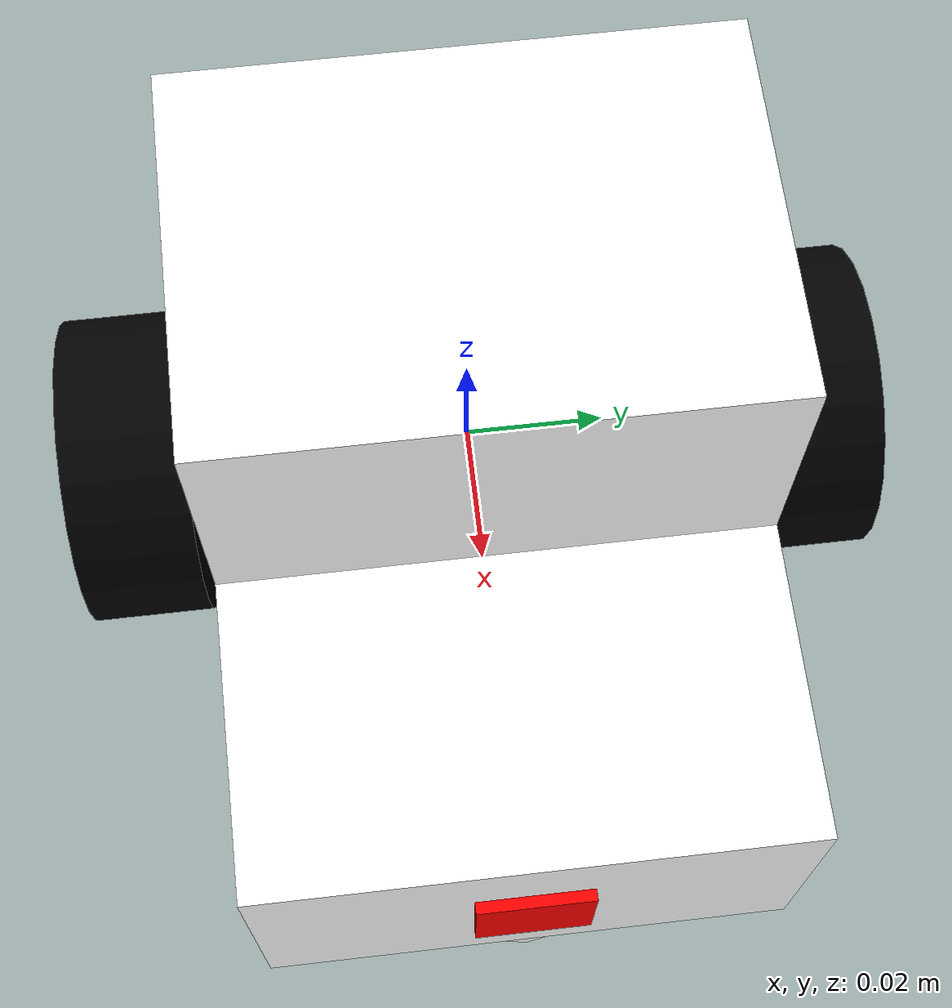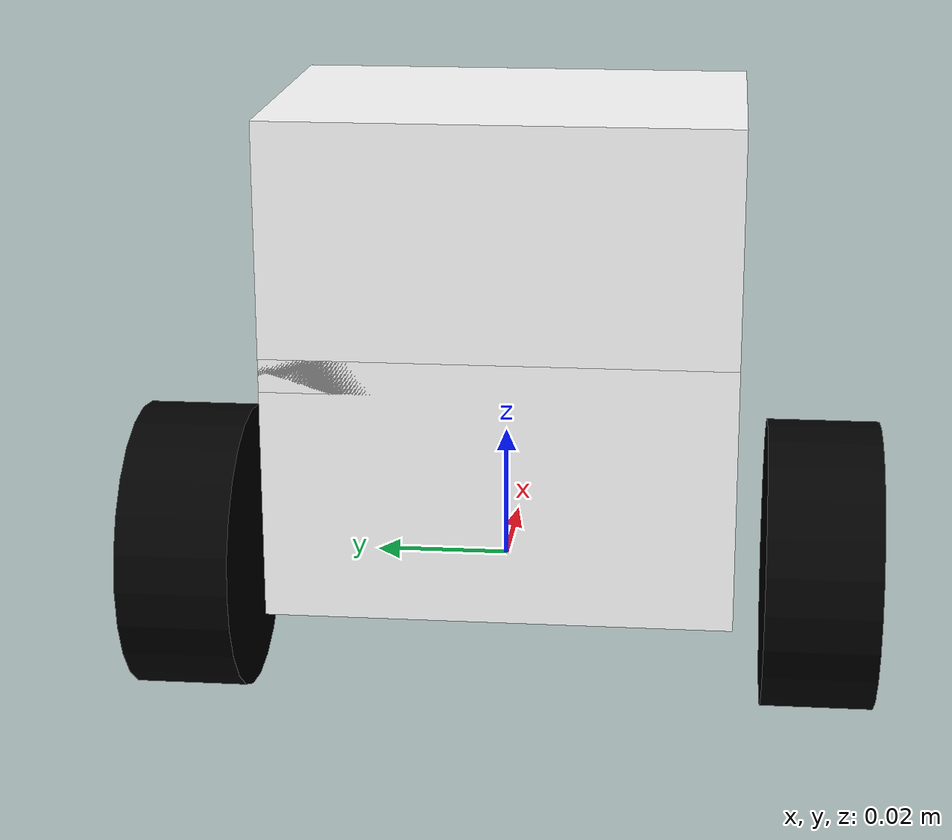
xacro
<?xml version="1.0"?>
<robot xmlns:xacro="http://www.ros.org/wiki/xacro"  name="robot">

    <xacro:arg name="use_ros2_control" default="true"/>
    <xacro:include filename="robot_core.xacro" />

    <xacro:if value="$(arg use_ros2_control)">
        <xacro:include filename="ros2_control.xacro" />
    </xacro:if>
    <xacro:unless value="$(arg use_ros2_control)">
        <xacro:include filename="gazebo_control.xacro" />
    </xacro:unless>

    <xacro:include filename="camera.xacro" />
</robot>

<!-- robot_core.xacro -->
<robot xmlns:xacro="http://www.ros.org/wiki/xacro"  >

    <xacro:include filename="inertial_macros.xacro"/>

    <xacro:property name="chassis_length" value="0.090"/>
    <xacro:property name="chassis_width" value="0.070"/>
    <xacro:property name="chassis_height" value="0.040"/>
    <xacro:property name="chassis_mass" value="1.0"/>
    <xacro:property name="wheel_radius" value="0.022"/>
    <xacro:property name="wheel_thickness" value="0.017"/>
    <xacro:property name="wheel_mass" value="0.3"/>
    <xacro:property name="wheel_offset_x" value="0.016"/>
    <xacro:property name="wheel_offset_y" value="0.048"/>
    <xacro:property name="wheel_offset_z" value="0.005"/>
    <xacro:property name="caster_wheel_radius" value="0.015"/>
    <xacro:property name="caster_wheel_mass" value="0.2"/>
    <xacro:property name="caster_wheel_offset_x" value="0.075"/>
    <xacro:property name="caster_wheel_offset_z" value="${wheel_offset_z - wheel_radius + caster_wheel_radius}"/>

    <material name="white">
        <color rgba="1 1 1 1" />
    </material>

    <material name="orange">
        <color rgba="1 0.3 0.1 1"/>
    </material>

    <material name="blue">
        <color rgba="0.2 0.2 1 1"/>
    </material>

    <material name="black">
        <color rgba="0 0 0 1"/>
    </material>

    <material name="red">
        <color rgba="1 0 0 1"/>
    </material>

    <!-- BASE LINK -->

    <link name="base_link">

    </link>

    <!-- BASE_FOOTPRINT LINK -->

    <joint name="base_footprint_joint" type="fixed">
        <parent link="base_link"/>
        <child link="base_footprint"/>
        <origin xyz="0 0 0" rpy="0 0 0"/>
    </joint>

    <link name="base_footprint">
    </link>

    <!-- CHASSIS LINK -->

    <joint name="chassis_joint" type="fixed">
        <parent link="base_link"/>
        <child link="chassis"/>
        <origin xyz="${-wheel_offset_x} 0 ${-wheel_offset_z}"/>
    </joint>

    <link name="chassis">
        <visual>
            <origin xyz="${chassis_length/2} 0 ${chassis_height/2}"/>
            <geometry>
                <box size="${chassis_length} ${chassis_width} ${chassis_height}"/>
            </geometry>
            <material name="white"/>
        </visual>
        <collision>
            <origin xyz="${chassis_length/2} 0 ${chassis_height/2}"/>
            <geometry>
                <box size="${chassis_length} ${chassis_width} ${chassis_height}"/>
            </geometry>
        </collision>
        <xacro:inertial_box mass="0.5" x="${chassis_length}" y="${chassis_width}" z="${chassis_height}">
            <origin xyz="${chassis_length/2} 0 ${chassis_height/2}" rpy="0 0 0"/>
        </xacro:inertial_box>

    </link>
    <gazebo reference="chassis">
        <material>Gazebo/White</material>
    </gazebo>

    <!-- CHASSIS TOP -->

    <joint name="chassis_top_joint" type="fixed">
        <parent link="base_link"/>
        <child link="chassis_top"/>
        <origin xyz="${-wheel_offset_x} 0 ${chassis_height-wheel_offset_z}"/>
    </joint>
    <link name="chassis_top">
        <visual>
            <origin xyz="0.025 0 ${(chassis_height/2)-wheel_offset_z}"/>
            <geometry>
                <box size="0.05 ${chassis_width} ${chassis_height}"/>
            </geometry>
            <material name="white"/>
        </visual>
        <collision>
            <origin xyz="0.025 0 ${(chassis_height/2)-wheel_offset_z}"/>
            <geometry>
                <box size="0.05 ${chassis_width} ${chassis_height}"/>
            </geometry>
        </collision>
        <xacro:inertial_box mass="0.03" x="${chassis_length}" y="${chassis_width}" z="${chassis_height}">
            <origin xyz="0.025 0 ${(chassis_height/2)-wheel_offset_z}" rpy="0 0 0"/>
        </xacro:inertial_box>
    </link>
    <gazebo reference="chassis_top">
        <material>Gazebo/White</material>
    </gazebo>

    <!-- LEFT WHEEL LINK -->

    <joint name="left_wheel_joint" type="continuous">
        <parent link="base_link"/>
        <child link="left_wheel"/>
        <origin xyz="0 ${wheel_offset_y} 0" rpy="-${pi/2} 0 0" />
        <axis xyz="0 0 1"/>
    </joint>

    <link name="left_wheel">
        <visual>
            <geometry>
                <cylinder radius="${wheel_radius}" length="${wheel_thickness}"/>
            </geometry>
            <material name="black"/>
        </visual>
        <collision>
            <geometry>
                <sphere radius="${wheel_radius}"/>
            </geometry>
        </collision>
        <xacro:inertial_cylinder mass="${wheel_mass}" length="${wheel_thickness}" radius="${wheel_radius}">
            <origin xyz="0 0 0" rpy="0 0 0"/>
        </xacro:inertial_cylinder>

    </link>

    <gazebo reference="left_wheel">
        <material>Gazebo/Black</material>
    </gazebo>

    <!-- RIGHT WHEEL LINK -->

    <joint name="right_wheel_joint" type="continuous">
        <parent link="base_link"/>
        <child link="right_wheel"/>
        <origin xyz="0 ${-wheel_offset_y} 0" rpy="${pi/2} 0 0" />
        <axis xyz="0 0 -1"/>
    </joint>

    <link name="right_wheel">
        <visual>
            <geometry>
                <cylinder radius="${wheel_radius}" length="${wheel_thickness}"/>
            </geometry>
            <material name="black"/>
        </visual>
        <collision>
            <geometry>
                <sphere radius="${wheel_radius}"/>
            </geometry>
        </collision>
        <xacro:inertial_cylinder mass="${wheel_mass}" length="${wheel_thickness}" radius="${wheel_radius}">
            <origin xyz="0 0 0" rpy="0 0 0"/>
        </xacro:inertial_cylinder>

    </link>

    <gazebo reference="right_wheel">
        <material>Gazebo/Black</material>
    </gazebo>

    <!-- CASTER WHEEL LINK -->

    <joint name="caster_wheel_joint" type="fixed">
        <parent link="chassis"/>
        <child link="caster_wheel"/>
        <origin xyz="${caster_wheel_offset_x} 0 ${caster_wheel_offset_z}"/>
    </joint>

    <link name="caster_wheel">
        <visual>
            <geometry>
                <sphere radius="${caster_wheel_radius}"/>
            </geometry>
            <material name="white"/>
        </visual>
        <collision>
            <geometry>
                <sphere radius="${caster_wheel_radius}"/>
            </geometry>
        </collision>
        <xacro:inertial_sphere mass="${caster_wheel_mass}" radius="${caster_wheel_radius}">
            <origin xyz="0 0 0" rpy="0 0 0"/>
        </xacro:inertial_sphere>

    </link>

    <gazebo reference="caster_wheel">
        <material>Gazebo/Black</material>
        <mu1 value="0.001"/>
        <mu2 value="0.001"/>
    </gazebo>

</robot>

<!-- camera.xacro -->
<robot xmlns:xacro="http://www.ros.org/wiki/xacro" >

    <joint name="camera_joint" type="fixed">
        <parent link="chassis"/>
        <child link="camera_link"/>
        <origin xyz="0.089 0 0.020" rpy="0 0 0"/>
    </joint>

    <link name="camera_link">
        <visual>
            <geometry>
                <box size="0.005 0.015 0.015"/>
            </geometry>
            <material name="red"/>
        </visual>
    </link>

    <joint name="camera_optical_joint" type="fixed">
        <parent link="camera_link"/>
        <child link="camera_link_optical"/>
        <origin xyz="0 0 0" rpy="${-pi/2} 0 ${-pi/2}"/>
    </joint>

    <link name="camera_link_optical"></link>

    <gazebo reference="camera_link">
        <material>Gazebo/Black</material>

        <sensor name="camera" type="camera">
            <pose> 0 0 0 0 0 0 </pose>
            <visualize>true</visualize>
            <update_rate>10</update_rate>
            <camera>
                <horizontal_fov>1.089</horizontal_fov>
                <image>
                    <format>R8G8B8</format>
                    <width>640</width>
                    <height>480</height>
                </image>
                <clip>
                    <near>0.05</near>
                    <far>8.0</far>
                </clip>
            </camera>
            <plugin name="camera_controller" filename="libgazebo_ros_camera.so">
                <frame_name>camera_link_optical</frame_name>
            </plugin>
        </sensor>
    </gazebo>

</robot>
